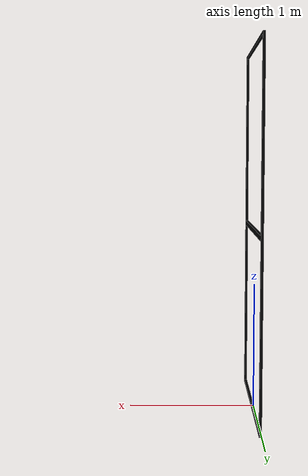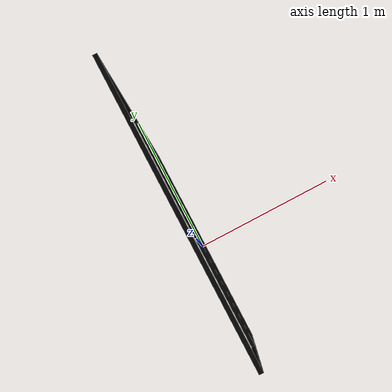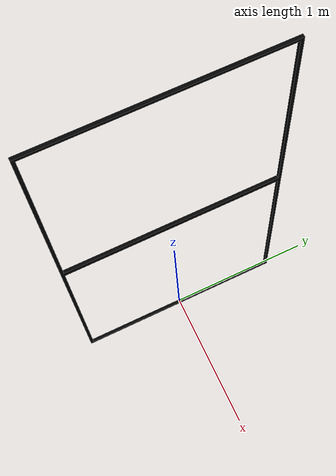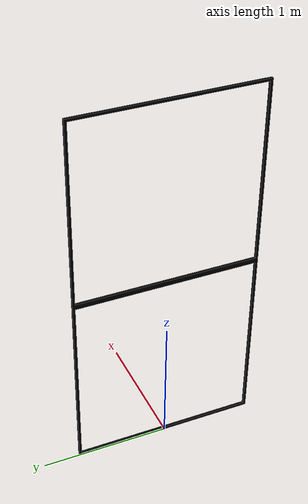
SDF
<?xml version="1.0" ?>
<sdf version="1.4">
    <model name="iros_gate">
      <static>1</static>
      <link name="link">
        <inertial>
          <pose>0 0 0 0 0 0</pose>
          <mass>1.0</mass>
          <inertia>
            <ixx>1.0</ixx>
            <ixy>000000</ixy>
            <ixz>0.000000</ixz>
            <iyy>1.0</iyy>
            <iyz>0.000000</iyz>
            <izz>1.0</izz>
          </inertia>
        </inertial>
        <collision name="collision">
          <pose>0 0 0 0 0 0</pose>
          <geometry>
            <mesh>
                <uri>model://iros_gate/meshes/iros_gate.dae</uri>
                <scale>.01 .01 .01</scale>
            </mesh>
          </geometry>
        </collision>
        <visual name="visual">
          <pose>0 0 0 0 0 0</pose>
          <geometry>
            <mesh>
                <uri>model://iros_gate/meshes/iros_gate.dae</uri>
                <scale>0.01 0.01 0.01</scale>
            </mesh>
          </geometry>
          <material> <!-- LED material -->
            <ambient>0 0 0 1</ambient>
            <diffuse>0 0 0 1</diffuse>
            <specular>0 0 0 0</specular>
            <emissive>0 1 0 1</emissive>
          </material> <!-- End LED material -->
        </visual>
      </link>
    </model>
</sdf>
